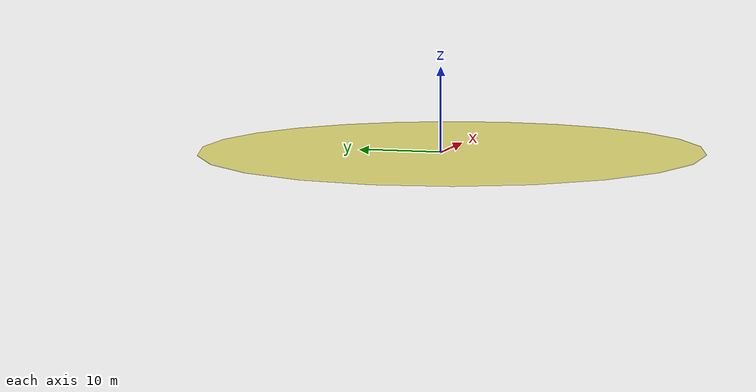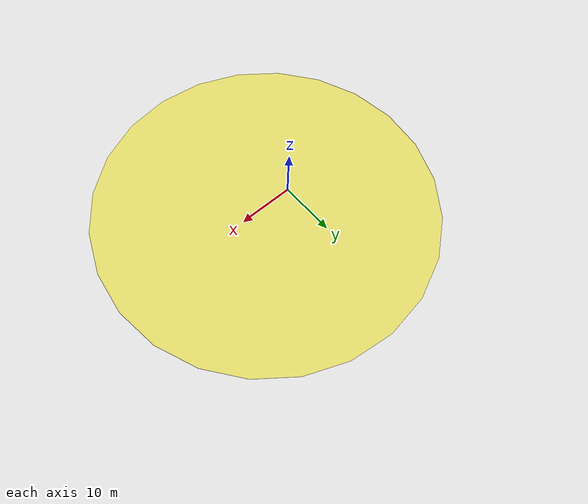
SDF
<?xml version="1.0" ?>
<sdf version="1.5">
  <model name="Target_5s">
    <static>true</static>
    <link name="red">
      <pose>5 0 0.06 0 0 0</pose>
      <visual name="visual">
        <geometry>
          <cylinder>
              <radius>30</radius>
              <length>0.1</length>
          </cylinder>
        </geometry>
        <material>
          <script>
            <uri>file://media/materials/scripts/gazebo.material</uri>
            <name>Gazebo/Yellow</name>
          </script>
        </material>
        <cast_shadows>1</cast_shadows>
        <transparency>0.4</transparency>
      </visual>
    </link>
  </model>
</sdf>
